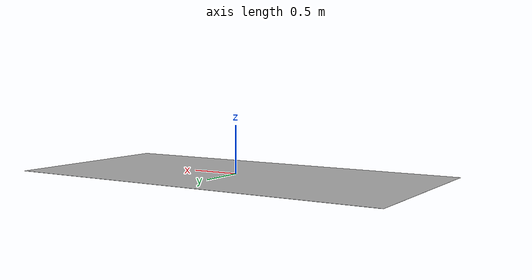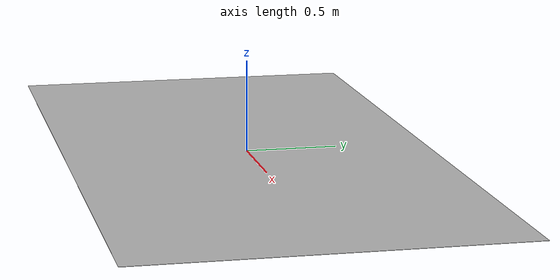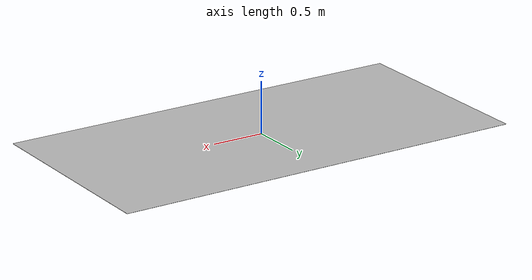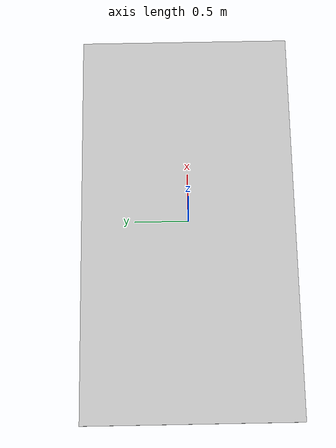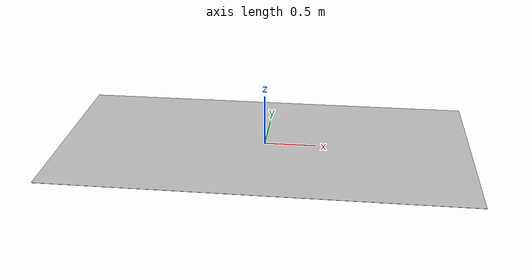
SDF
<?xml version="1.0" ?>
<!-- Physical size must match config/bev_calib_mat.yaml width_m × height_m. -->
<sdf version="1.6">
  <model name="bev_calib_mat">
    <static>true</static>
    <link name="link">
      <pose>0 0 0 0 0 0</pose>
      <collision name="collision">
        <geometry>
          <plane>
            <normal>0 0 1</normal>
            <size>4.0 2.0</size>
          </plane>
        </geometry>
        <surface>
          <friction>
            <ode>
              <mu>0.8</mu>
              <mu2>0.8</mu2>
            </ode>
          </friction>
        </surface>
      </collision>
      <visual name="visual">
        <geometry>
          <plane>
            <normal>0 0 1</normal>
            <size>4.0 2.0</size>
          </plane>
        </geometry>
        <material>
          <script>
            <uri>model://bev_calib_mat/materials/scripts</uri>
            <uri>model://bev_calib_mat/materials/textures</uri>
            <name>BevCalibMatMaterial</name>
          </script>
        </material>
      </visual>
    </link>
  </model>
</sdf>
